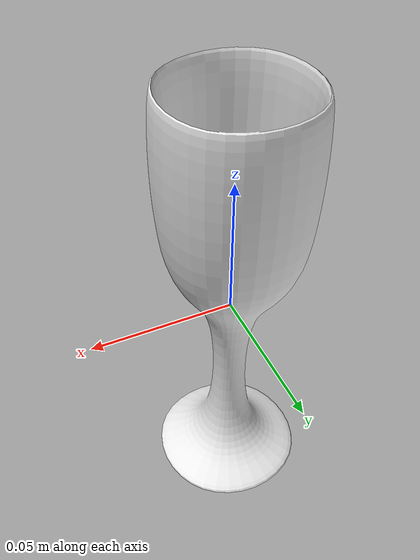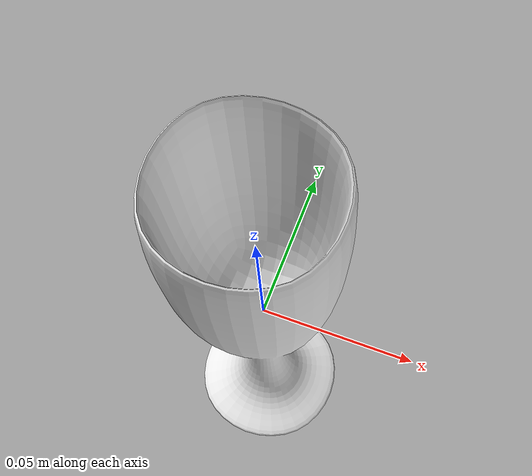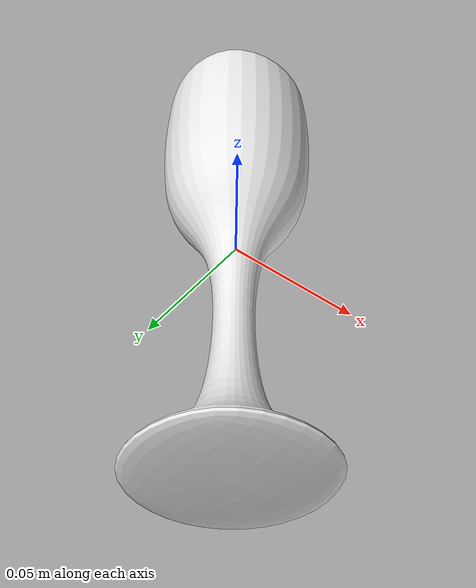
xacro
<?xml version="1.0"?>
<robot xmlns:xacro="http://www.ros.org/wiki/xacro" name="cup">
    <xacro:property name="mass" value="0.05" />
    <xacro:property name="height" value="0.16" />
    <xacro:property name="width" value="0.05" />
    <xacro:property name="length" value="0.05" />
    <link name="cup_footprint"></link>
    <link name="cup">
        <inertial>
            <origin xyz="0 0 0" rpy="0 0 0"/>
            <mass value="${mass}"/>
            <inertia ixx="${(1/12)*mass*((width**2) + (height**2))}" ixy="0" ixz="0" iyy="${(1/12)*mass*((length**2) + (height**2))}" iyz="0" izz="${(1/2)*mass*((width**2) + (length**2))}" />
        </inertial>
        <visual>
            <geometry>
                <mesh filename="$(find moveit_apps)/urdf/meshes/glass-cup.stl" scale="0.02 0.02 0.02"/>
            </geometry>
        </visual>
        <collision>
            <geometry>
                <box size="${length} ${width} ${height}"/>
            </geometry>
        </collision>
    </link>
    <joint name="base_cup" type="fixed">
        <parent link="cup_footprint" />
        <child link="cup" />
        <origin xyz="0 0 0" rpy="0 0 0" />
    </joint>
    <gazebo reference="cup">
        <material>Gazebo/White</material>
        <dampingFactor>0.005</dampingFactor>
        <kp>1000000</kp>
        <kd>1.0</kd>
        <mu1>0.2</mu1>
        <mu2>0.2</mu2>
        <minDepth>0.01</minDepth>
    </gazebo>
</robot>
